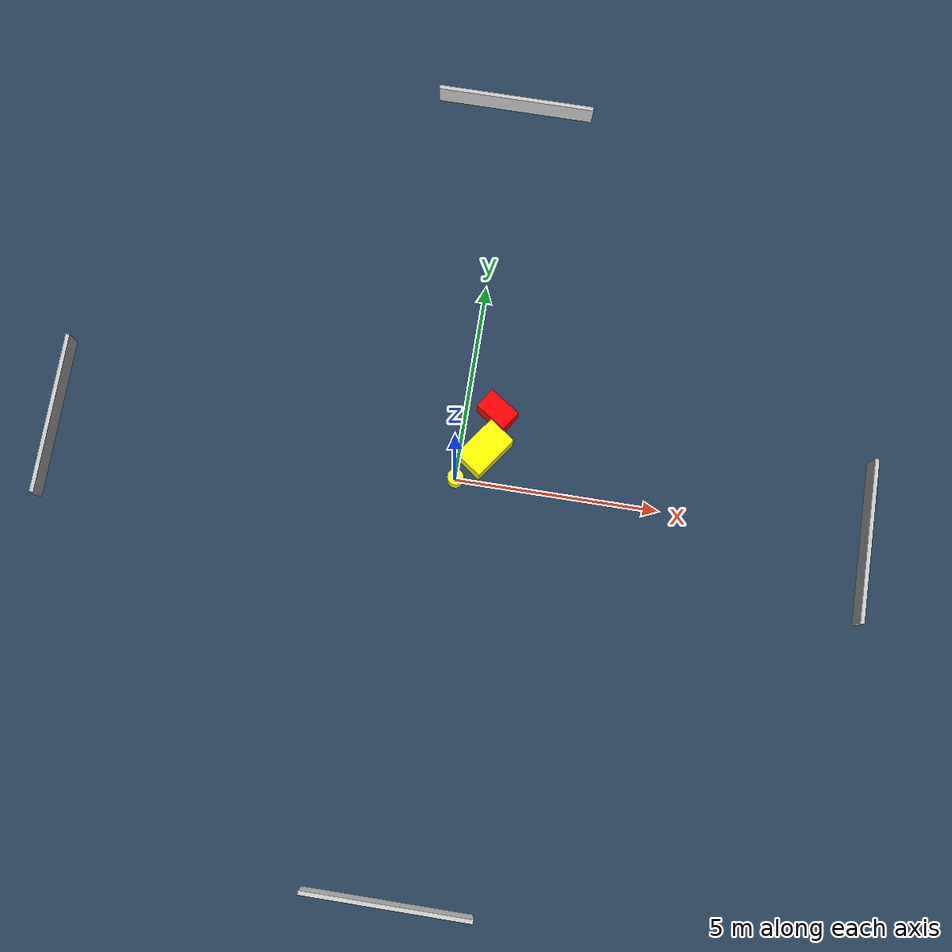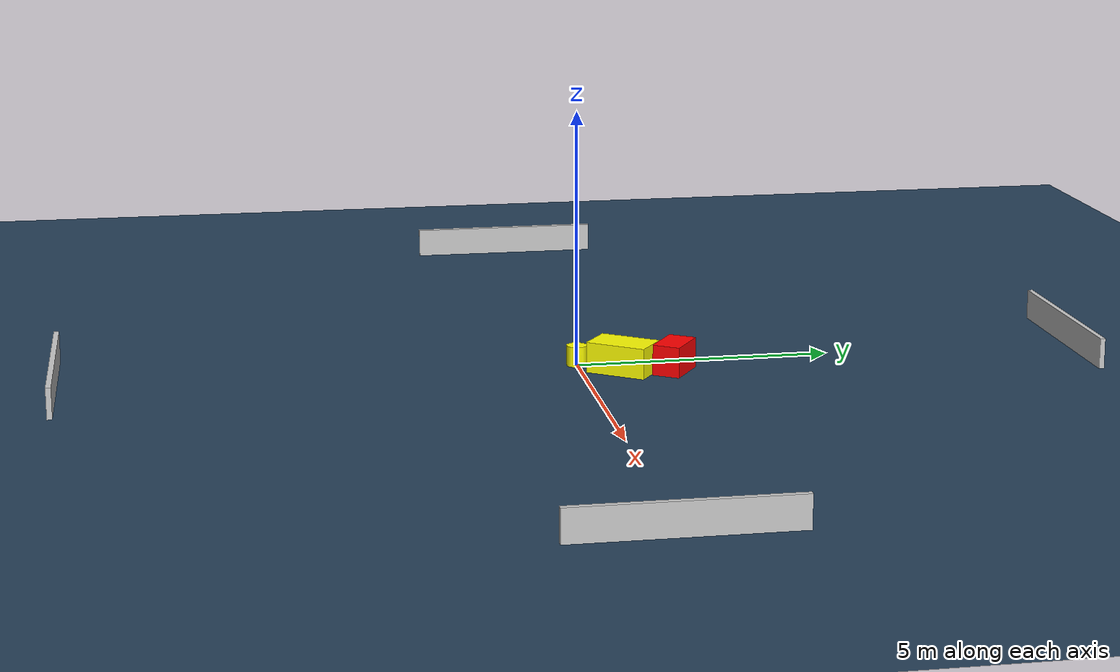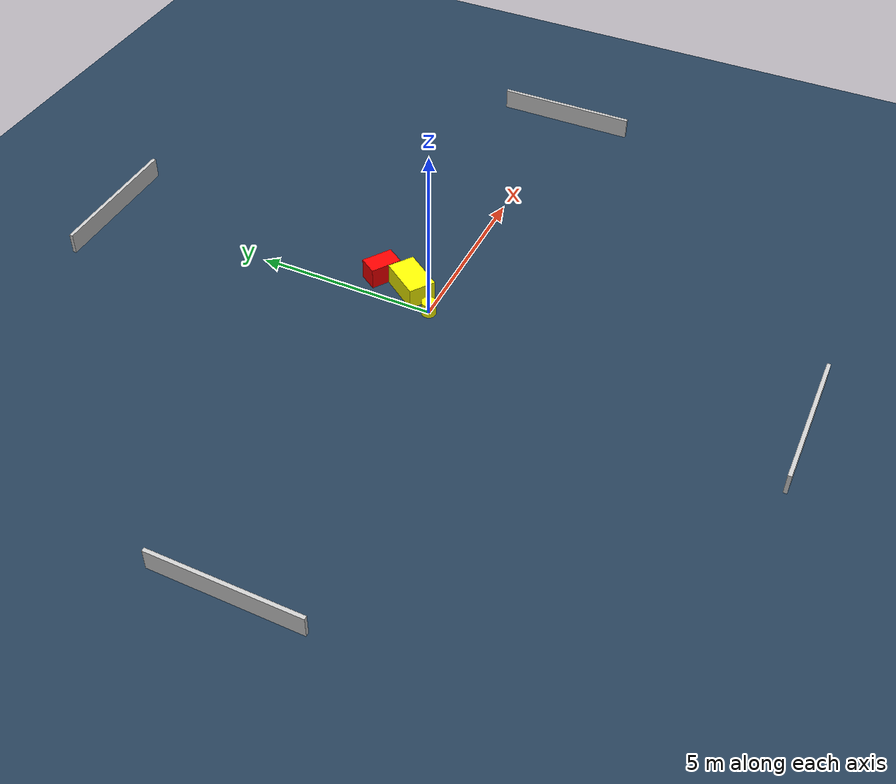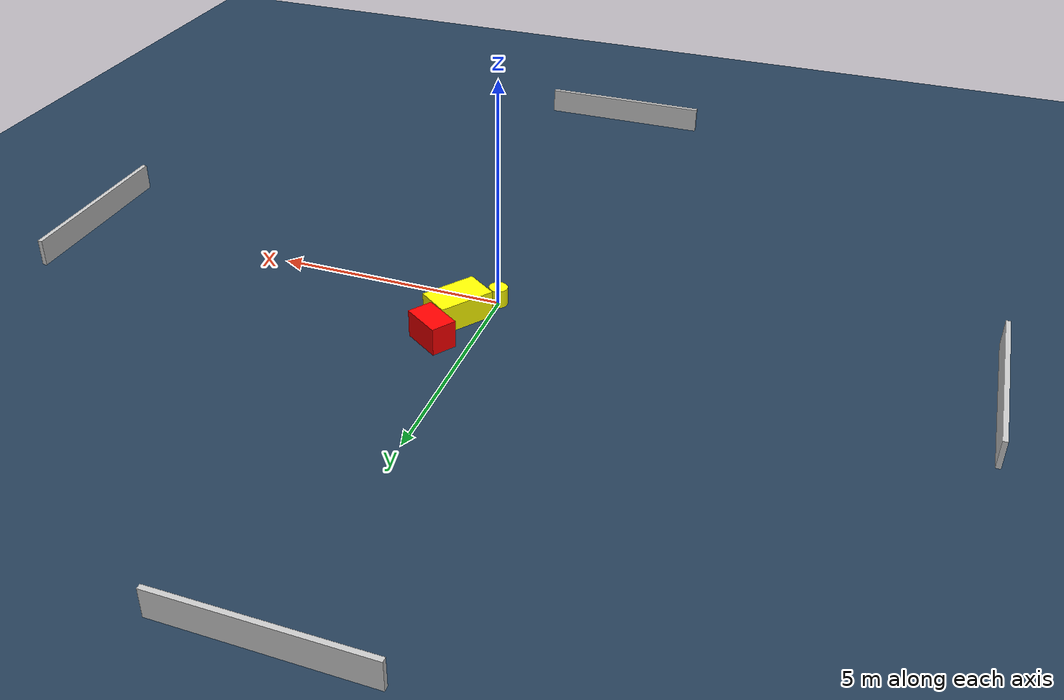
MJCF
<?xml version="1.0" ?>
<mujoco model="generated_environment">
  <option timestep="0.01" integrator="RK4" cone="elliptic"/>
  <default>
    <geom density="1"/>
  </default>
  <asset>
    <texture builtin="gradient" height="3072" name="skybox" rgb1="0.3 0.5 0.7" rgb2="0 0 0" type="skybox" width="512"/>
    <texture builtin="checker" height="300" name="groundplane" rgb1="0.2 0.3 0.4" rgb2="0.1 0.2 0.3" type="2d" width="300"/>
    <material name="groundplane" reflectance="0.2" texrepeat="5 5" texture="groundplane"/>
  </asset>
  <worldbody>
    <light dir="0 0 -1" directional="true" pos="0 0 1.5"/>
    <geom condim="3" friction="0.5 0.005 0.001" material="groundplane" name="floor" pos="0 0 0" size="0 0 0.05" type="plane"/>
    <body name="walls">
      <geom name="wall_1" condim="4" pos="-10.0 0.0 0.3" rgba="0.800000011920929 0.800000011920929 0.800000011920929 1.0" size="0.05 2.0 0.3" type="box"/>
      <geom name="wall_2" condim="4" pos="10.0 0.0 0.3" rgba="0.800000011920929 0.800000011920929 0.800000011920929 1.0" size="0.05 2.0 0.3" type="box"/>
      <geom name="wall_3" condim="4" pos="0.0 -10.0 0.3" rgba="0.800000011920929 0.800000011920929 0.800000011920929 1.0" size="2.0 0.05 0.3" type="box"/>
      <geom name="wall_4" condim="4" pos="0.0 10.0 0.3" rgba="0.800000011920929 0.800000011920929 0.800000011920929 1.0" size="2.0 0.05 0.3" type="box"/>
    </body>
    <body name="robot">
      <joint name="joint_x" type="slide" pos="0 0 0" axis="1 0 0"/>
      <joint name="joint_y" type="slide" pos="0 0 0" axis="0 1 0"/>
      <geom name="robot" type="cylinder" pos="0.0 0.0 0.2" size="0.2 0.2 0.0" mass="5.0" friction="1.0 0.005 0.0001" condim="4" rgba="1.0 1.0 0.0 1.0"/>
    </body>
    <body name="obstacle_1_movable">
      <geom name="obstacle_1_movable" condim="4" pos="0.5991859674790481 0.8003675500250013 0.3" euler="0 0 234.60221826685444" friction="0.0 0.005 0.001" rgba="1.0 1.0 0.0 1.0" size="0.6062343547290521 0.3772496319842107 0.3" type="box" mass="0.1"/>
      <joint type="free"/>
    </body>
    <body name="obstacle_2_static">
      <geom name="obstacle_2_static" condim="4" pos="0.7605562619213554 1.7804934643599928 0.3" euler="0 0 146.22742510552672" friction="0.0 0.005 0.001" rgba="1.0 0.0 0.0 1.0" size="0.43689098397119847 0.27350255424311376 0.3" type="box"/>
    </body>
  </worldbody>
  <actuator>
    <motor name="actuator_x" joint="joint_x" gear="1" ctrlrange="-1 1"/>
    <motor name="actuator_y" joint="joint_y" gear="1" ctrlrange="-1 1"/>
  </actuator>
</mujoco>
